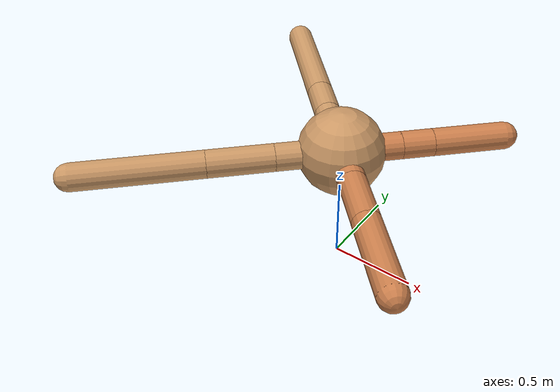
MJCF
<mujoco model="ant">
  <compiler angle="degree" coordinate="local" inertiafromgeom="true" />
  <option integrator="RK4" timestep="0.01" />
  <custom>
    <numeric data="0.0 0.0 0.55 1.0 0.0 0.0 0.0 0.0 1.0 0.0 -1.0 0.0 -1.0 0.0 1.0" name="init_qpos" />
  </custom>
  <default>
    <joint armature="1" damping="1" limited="true" />
    <geom conaffinity="0" condim="3" density="5.0" friction="1.5 0.1 0.1" margin="0.01" rgba="0.8 0.6 0.4 1" />
  </default>
  <worldbody>
    <body name="torso" pos="0 0 0.75">
      <geom name="torso_geom" pos="0 0 0" size="0.25" type="sphere" />

      <body name="front_left_leg" pos="0 0 0">
        <geom fromto="0.0 0.0 0.0 0.2418344118760937 0.2418344118760937 0.0" name="aux_1_geom" size="0.08" type="capsule" rgba=".8 .5 .3 1" />
        <body name="aux_1" pos="0.2418344118760937 0.2418344118760937 0.0">
          <joint axis="0 0 1" name="hip_1" pos="0.0 0.0 0.0" range="-40 40" type="hinge" />
          <geom fromto="0.0 0.0 0.0 0.1297388855683516 0.1297388855683516 0.0" name="left_leg_geom" size="0.08" type="capsule" rgba=".8 .5 .3 1" />
          <body pos="0.1297388855683516 0.1297388855683516 0.0" name="front_left_foot">
            <joint axis="-1 1 0" name="ankle_1" pos="0.0 0.0 0.0" range="30 100" type="hinge" />
            <geom fromto="0.0 0.0 0.0 0.299392586636605 0.299392586636605 0.0" name="left_ankle_geom" size="0.08" type="capsule" rgba=".8 .5 .3 1" />
          </body>
        </body>
      </body>
      <body name="front_right_leg" pos="0 0 0">
        <geom fromto="0.0 0.0 0.0 -0.2705223045898598 0.2705223045898598 0.0" name="aux_2_geom" size="0.08" type="capsule" />
        <body name="aux_2" pos="-0.2705223045898598 0.2705223045898598 0.0">
          <joint axis="0 0 1" name="hip_2" pos="0.0 0.0 0.0" range="-40 40" type="hinge" />
          <geom fromto="0.0 0.0 0.0 -0.16804049938107474 0.16804049938107474 0.0" name="right_leg_geom" size="0.08" type="capsule" />
          <body pos="-0.16804049938107474 0.16804049938107474 0.0" name="front_right_foot">
            <joint axis="1 1 0" name="ankle_2" pos="0.0 0.0 0.0" range="-100 -30" type="hinge" />
            <geom fromto="0.0 0.0 0.0 -0.5277049311678443 0.5277049311678443 0.0" name="right_ankle_geom" size="0.08" type="capsule" />
          </body>
        </body>
      </body>
      <body name="left_back_leg" pos="0 0 0">
        <geom fromto="0.0 0.0 0.0 -0.2667775992882021 -0.2667775992882021 0.0" name="aux_3_geom" size="0.08" type="capsule" />
        <body name="aux_3" pos="-0.2667775992882021 -0.2667775992882021 0.0">
          <joint axis="0 0 1" name="hip_3" pos="0.0 0.0 0.0" range="-40 40" type="hinge" />
          <geom fromto="0.0 0.0 0.0 -0.26844044567546604 -0.26844044567546604 0.0" name="back_leg_geom" size="0.08" type="capsule" />
          <body pos="-0.26844044567546604 -0.26844044567546604 0.0" name="left_back_foot">
            <joint axis="-1 1 0" name="ankle_3" pos="0.0 0.0 0.0" range="-100 -30" type="hinge" />
            <geom fromto="0.0 0.0 0.0 -0.5164790885303335 -0.5164790885303335 0.0" name="third_ankle_geom" size="0.08" type="capsule" />
          </body>
        </body>
      </body>
      <body name="right_back_leg" pos="0 0 0">
        <geom fromto="0.0 0.0 0.0 0.20047508165431518 -0.20047508165431518 0.0" name="aux_4_geom" size="0.08" type="capsule" rgba=".8 .5 .3 1" />
        <body name="aux_4" pos="0.20047508165431518 -0.20047508165431518 0.0">
          <joint axis="0 0 1" name="hip_4" pos="0.0 0.0 0.0" range="-40 40" type="hinge" />
          <geom fromto="0.0 0.0 0.0 0.22341937606240558 -0.22341937606240558 0.0" name="rightback_leg_geom" size="0.08" type="capsule" rgba=".8 .5 .3 1" />
          <body pos="0.22341937606240558 -0.22341937606240558 0.0" name="right_back_foot">
            <joint axis="1 1 0" name="ankle_4" pos="0.0 0.0 0.0" range="30 100" type="hinge" />
            <geom fromto="0.0 0.0 0.0 0.34869559404120487 -0.34869559404120487 0.0" name="fourth_ankle_geom" size="0.08" type="capsule" rgba=".8 .5 .3 1" />
          </body>
        </body>
      </body>
    </body>
  </worldbody>
  <actuator>
    <motor ctrllimited="true" ctrlrange="-1.0 1.0" joint="hip_4" gear="150" />
    <motor ctrllimited="true" ctrlrange="-1.0 1.0" joint="ankle_4" gear="150" />
    <motor ctrllimited="true" ctrlrange="-1.0 1.0" joint="hip_1" gear="150" />
    <motor ctrllimited="true" ctrlrange="-1.0 1.0" joint="ankle_1" gear="150" />
    <motor ctrllimited="true" ctrlrange="-1.0 1.0" joint="hip_2" gear="150" />
    <motor ctrllimited="true" ctrlrange="-1.0 1.0" joint="ankle_2" gear="150" />
    <motor ctrllimited="true" ctrlrange="-1.0 1.0" joint="hip_3" gear="150" />
    <motor ctrllimited="true" ctrlrange="-1.0 1.0" joint="ankle_3" gear="150" />
  </actuator>
</mujoco>
